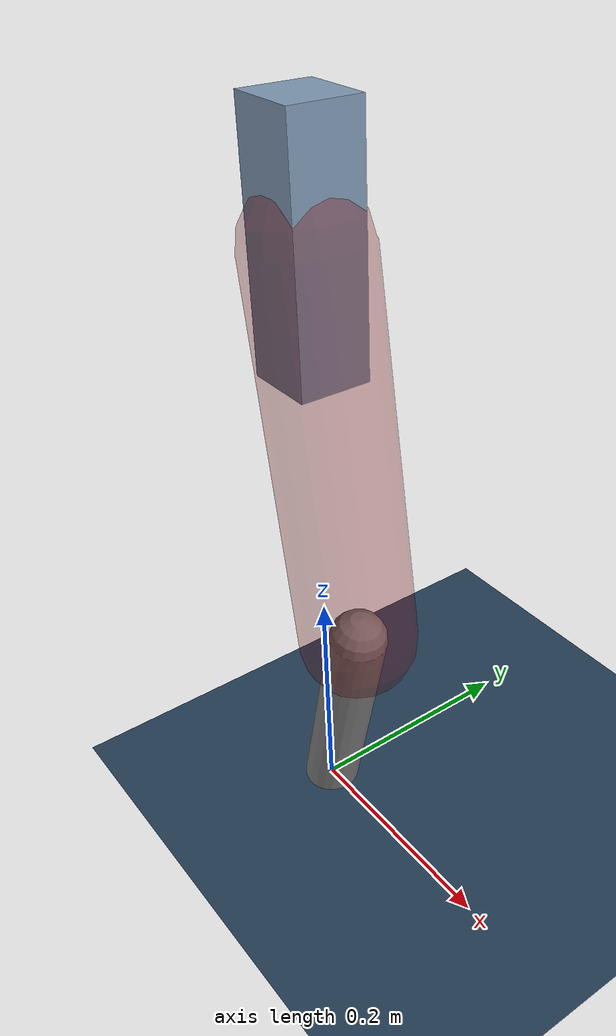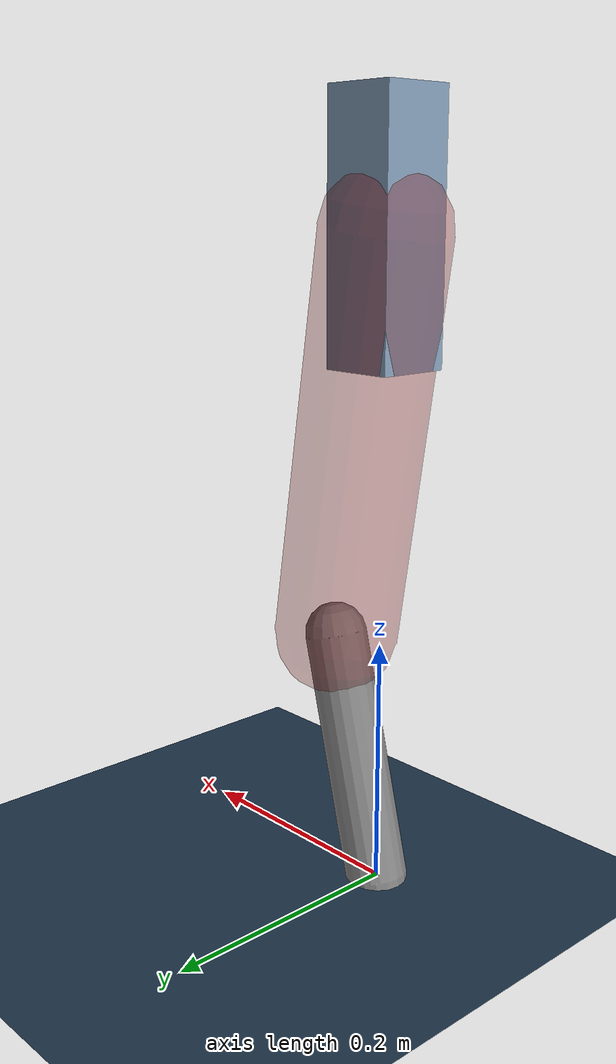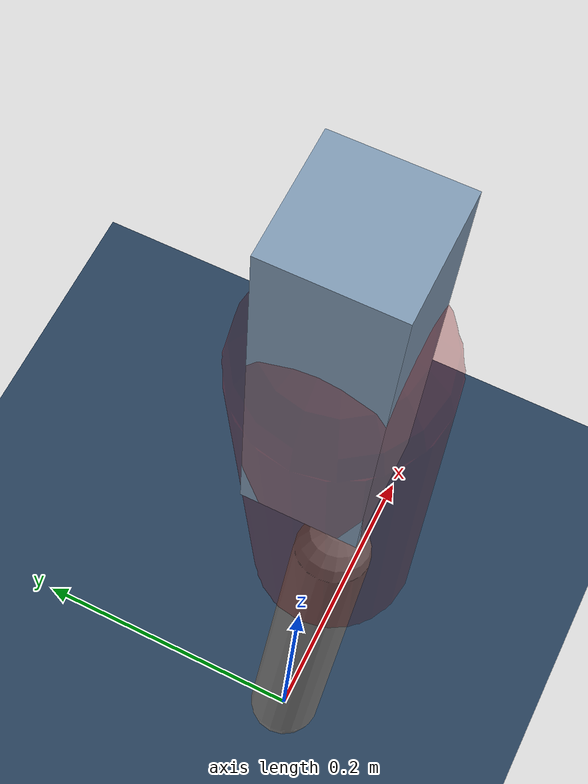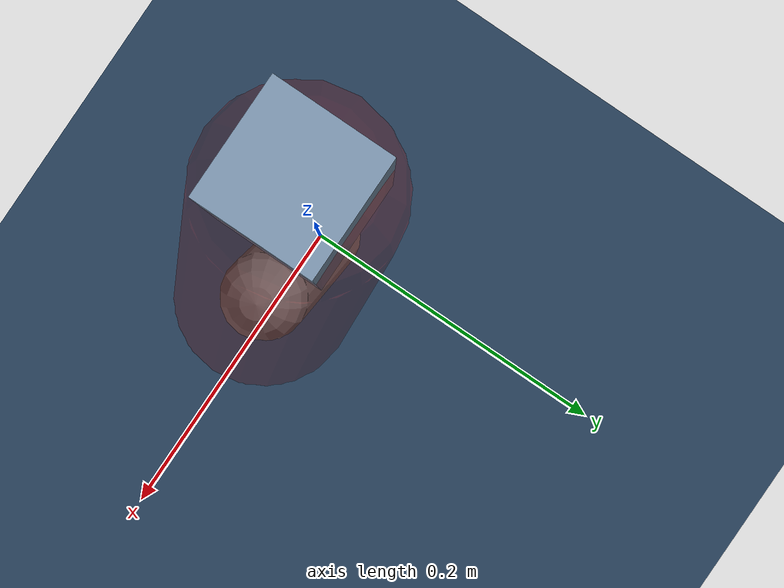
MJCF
<mujoco model="Hopper2D">
	<compiler inertiafromgeom="true" angle="radian" />
	<option timestep="0.001" integrator="implicit" cone="elliptic" solver="Newton" tolerance="1e-10" />

	<default>
		<geom contype="1" conaffinity="1" condim="3" friction="2 0.005 0.0001" solref="0.005 1" />
		<joint limited="true" damping="0.1" />
	</default>

	<asset>
		<texture name="skybox" type="skybox" builtin="gradient" rgb1=".4 .6 .8" rgb2="0 0 0" width="800" height="800" />
		<texture name="grid" type="2d" builtin="checker" rgb1=".1 .2 .3" rgb2=".2 .3 .4" width="300" height="300" mark="edge" markrgb=".2 .3 .4" />
		<material name="ground" texture="grid" texrepeat="1 1" texuniform="true" reflectance="0.1" />
		<material name="leg" rgba="0.5 0.6 0.7 1" />
	</asset>

	<worldbody>

		<geom name="floor" type="plane" size="5 5 0.25" material="ground" />

		<light directional="false" diffuse="0.8 0.8 0.8" specular="0.3 0.3 0.3" pos="0 0 2" dir="0 0 -1" />
		<light mode="targetbodycom" target="base" directional="false" diffuse="0.8 0.8 0.8" specular="0.3 0.3 0.3" pos="0 0 2" dir="0 0 -1" />

		<camera name="fixed" pos="0 -2 1" xyaxes="1 0 0 0 0 1" />
		<camera name="tracking" mode="trackcom" pos="0 -3 1" />

		<body name="root" pos="0 0 0.5157702507040125">
			<joint name="slide_x" type="slide" axis="1 0 0" range="-100 100" />
			<joint name="slide_z" type="slide" axis="0 0 1" range="0 10" />

			<body name="base" pos="0 0 0">
				<geom name="torso" type="box" size="0.03 0.03 0.1" mass="1.9049999999999998" material="leg" />

				<body name="link1" pos="0 0 0" euler="0 1.415717149641102 0">
					<joint type="hinge" axis="0 -1 0" pos="0 0 0" name="hinge1" limited="true" range="-3.14 3.14" stiffness="0" damping="0.1" />
					<geom name="thigh" type="capsule" fromto="0 0 0 0.32166958532150025 0 0" size="0.05" rgba="0.5 0 0 0.3" mass="1.0478078803680506" />

					<body name="link2" pos="0.32166958532150025 0 0" euler="0 0.4009814685153736 0">
						<joint type="hinge" axis="0 -1 0" pos="0 0 0" name="hinge2" limited="true" range="-3.14 3.14" stiffness="0" damping="0.1" />
						<geom name="shank" type="capsule" fromto="0 0 0 0.20410066538251231 0 0" size="0.025" mass="0.40438053230600984" />

					</body>
				</body>
			</body>
		</body>
	</worldbody>

	<actuator>
		<motor name="torque1" joint="hinge1" ctrlrange="-9.029522299773395 9.029522299773395" ctrllimited="true" gear="1" />
		<motor name="torque2" joint="hinge2" ctrlrange="-108.52167818679806 108.52167818679806" ctrllimited="true" gear="1" />
	</actuator>
</mujoco>
